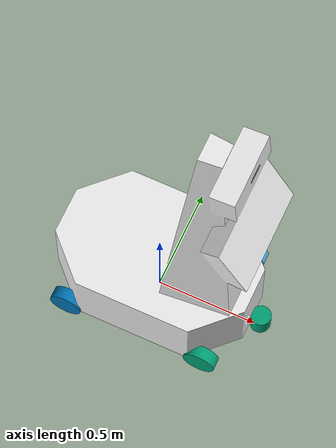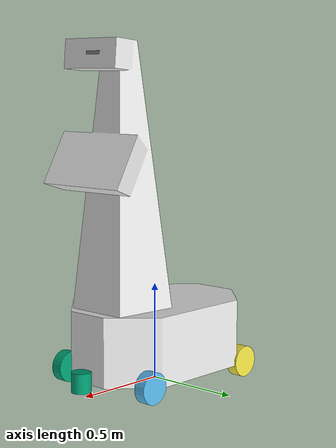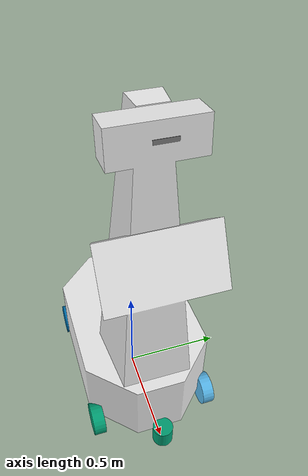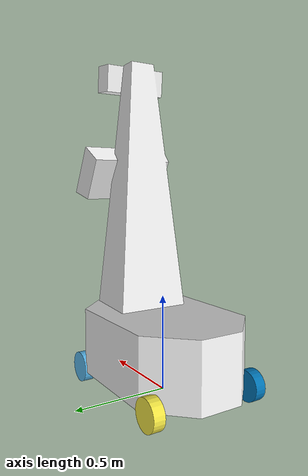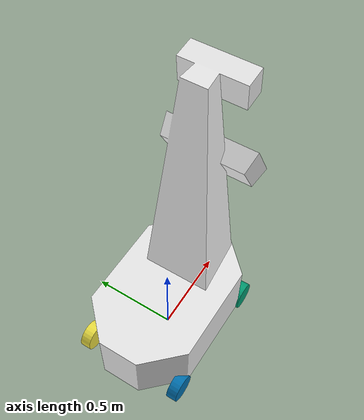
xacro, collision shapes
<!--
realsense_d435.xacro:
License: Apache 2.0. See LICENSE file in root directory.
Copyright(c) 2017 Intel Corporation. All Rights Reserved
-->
<?xml version="1.0" ?>
<robot name="rosa" xmlns:xacro="http://www.ros.org/wiki/xacro">

  <xacro:include filename="materials.xacro" />
  <xacro:include filename="rosa_gazebo.xacro" />
  <xacro:include filename="omni_wheel.xacro" />
  <xacro:include filename="rosa_body.xacro" />
  <xacro:include filename="realsense_d435.xacro" />
  <xacro:include filename="lidar_sensor.xacro"/>

<xacro:property name="wheel_x" value="0.35" />
<xacro:property name="wheel_y" value="0.295" />
<xacro:property name="wheel_z" value="0.075" />

  <!-- Base Macro-->
  <xacro:rosa_base name="chasis">
  </xacro:rosa_base>

  <!-- Wheel Macro -->
  <xacro:mechanum_wheel name="wheel_front_left" parent="base_link">
  	<origin xyz="${wheel_x} ${wheel_y} 0" rpy="0 0 0" />
  </xacro:mechanum_wheel>

  <xacro:mechanum_wheel name="wheel_front_right" parent="base_link" reflect="true">
  	<origin xyz="${wheel_x} -${wheel_y} 0" rpy="0 0 0" />
  </xacro:mechanum_wheel>

  <xacro:mechanum_wheel name="wheel_back_left" parent="base_link" reflect="true">
  	<origin xyz="-${wheel_x} ${wheel_y} 0" rpy="0 0 3.14159" />
  </xacro:mechanum_wheel>

  <xacro:mechanum_wheel name="wheel_back_right" parent="base_link">
  	<origin xyz="-${wheel_x} -${wheel_y} 0" rpy="0 0 3.14159" />
  </xacro:mechanum_wheel>

    <!-- 3D CAMERA -->
    <xacro:realsense_d435 name="camera" parent="base_link">
        <origin xyz="0.425 0.0 1.59" rpy="0.0 0.0 0.0"/>
    </xacro:realsense_d435>

  <!-- Sensor LiDAR -->
  <xacro:lidar_sensor name="lidar_sensor" parent="base_link">
    <origin xyz="0.53 0.0 0.01" rpy="0 0 0"/>
  </xacro:lidar_sensor>

<!-- Robot Footprint -->
  <link name="base_footprint"/>
  <link name="base_link"/>

  <joint name="footprint_joint" type="fixed">
    <parent link="base_footprint"/>
    <child link="base_link"/>
    <origin xyz="0.0 0.0 ${wheel_z}" rpy="0 0 0"/>
  </joint>
  <joint name="chasis_joint" type="fixed">
    <parent link="base_link"/>
    <child link="chasis"/>
    <origin xyz="0.0 0.0 0" rpy="0 0 0"/>
  </joint>

</robot>

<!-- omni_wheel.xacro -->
<robot xmlns:xacro="http://www.ros.org/wiki/xacro" name="rosa">

  <xacro:macro name="mechanum_wheel" params="name parent reflect:='false' *origin">

   <link name="${name}_link" type="wheel">
    <inertial>
      <mass value="0.25" />
      <origin xyz="0 0 0" rpy="0 0 0" />
        <inertia  ixx="0.04" ixy="0.0007" ixz="0.0"
                  iyy="0.02" iyz="0.004"
                  izz="0.05" />
    </inertial>

    <visual>
     <geometry>
     <xacro:if value="${reflect}">
        <mesh filename="file://$(find rosa_description)/description/rosa/meshes/MECANUM_WHEEL_mhg.dae" scale="1 -1 1"/>
     </xacro:if>
     <xacro:unless value="${reflect}">
        <mesh filename="file://$(find rosa_description)/description/rosa/meshes/MECANUM_WHEEL_mhg.dae" scale="1 1 1"/>
     </xacro:unless>
     </geometry>
    </visual>
    <collision>
     <origin xyz="0 0 0" rpy="1.5707 0 0"/>
     <geometry>
	<cylinder length="0.06" radius="0.08"/>
     </geometry>
    </collision>
   </link>

   <joint name="${name}_joint" type="continuous">
    <xacro:insert_block name="origin" />
    <axis xyz="0 1 0" />
    <joint_properties damping="0.01" friction="0.01" />
    <parent link="${parent}" />
    <child link="${name}_link" />
   </joint>

  <gazebo reference="${name}_link">
    <mu1 value="0.1"/>
    <mu2 value="0.1"/>
  </gazebo>

  </xacro:macro>

</robot>

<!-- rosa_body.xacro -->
<robot xmlns:xacro="http://www.ros.org/wiki/xacro" name="rosa">

<xacro:macro name="rosa_base" params="name">
  <link name="${name}">
    <inertial>
      <mass value="80"/>
      <origin xyz="0 0 0.3" />
       <inertia ixx="5.652232699207" ixy="0.009719934438" ixz="1.293988226423"
               iyy="5.669473158652" iyz="0.007379583694"
               izz="5.683196351726" />
    </inertial>
    <visual>
      <origin xyz="0. 0. ${wheel_z}" rpy="0 3.14159 3.14159" />
      <geometry>
          <mesh filename="file://$(find rosa_description)/description/rosa/meshes/ROSA_BODY.dae"/>
      </geometry>
      <material name="white"/>
    </visual>
    <collision>
      <origin xyz="0. 0. ${wheel_z}" rpy="0 3.14159 3.14159" />
      <geometry>
         <mesh filename="file://$(find rosa_description)/description/rosa/meshes/ROSA_BODY_SIMPLE.stl"/>
      </geometry>
    </collision>
  </link>

</xacro:macro>

</robot>

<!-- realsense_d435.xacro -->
<robot xmlns:xacro="http://ros.org/wiki/xacro">

    <xacro:macro name="realsense_d435" params="name parent *origin">

	<!-- The following values are approximate, and the camera node
         publishing TF values with actual calibrated camera extrinsic values -->
        <xacro:property name="d435_cam_depth_to_left_ir_offset" value="0.0"/>
        <xacro:property name="d435_cam_depth_to_right_ir_offset" value="-0.050"/>
        <xacro:property name="d435_cam_depth_to_color_offset" value="0.015"/>

        <!-- The following values model the aluminum peripherial case for the
        D435 camera, with the camera joint represented by the actual
        peripherial camera tripod mount -->
        <xacro:property name="d435_cam_width" value="0.090"/>
        <xacro:property name="d435_cam_height" value="0.025"/>
        <xacro:property name="d435_cam_depth" value="0.02505"/>
        <xacro:property name="d435_cam_mount_from_center_offset" value="0.0149"/>

        <!-- The following offset is relative the the physical D435 camera peripherial
        camera tripod mount -->
        <xacro:property name="d435_cam_depth_px" value="0.02"/>
        <xacro:property name="d435_cam_depth_py" value="0.0175"/>
        <xacro:property name="d435_cam_depth_pz" value="${d435_cam_height/2}"/>

        <material name="${name}_aluminum">
            <color rgba="0.5 0.5 0.5 1"/>
        </material>

        <!-- camera body, with origin at bottom screw mount -->
        <joint name="${name}_d435_joint" type="fixed">
            <xacro:insert_block name="origin" />
            <parent link="${parent}"/>
            <child link="${name}_link" />
        </joint>

        <link name="${name}_link">
            <visual>
                <origin xyz="${d435_cam_mount_from_center_offset} 0.0 ${d435_cam_height/2}" rpy="${pi/2} 0 ${pi/2}"/>
                <geometry>
                   <mesh filename="file://$(find rosa_description)/description/rosa/meshes/realsense_d435.dae"/>
                </geometry>
                <material name="${name}_aluminum"/>
            </visual>
            <collision>
                <origin xyz="0.0 0.0 ${d435_cam_height/2}" rpy="0 0 0"/>
                <geometry>
                    <box size="${d435_cam_depth} ${d435_cam_width} ${d435_cam_height}"/>
                </geometry>
            </collision>
            <inertial>
                <!-- The following are not reliable values, and should not be used for modeling -->
                <mass value="0.564" />
                <origin xyz="0 0 0" />
                <inertia ixx="0.003881243" ixy="0.0" ixz="0.0" iyy="0.000498940" iyz="0.0" izz="0.003879257" />
            </inertial>
        </link>

        <!-- camera depth joints and links -->
        <joint name="${name}_depth_joint" type="fixed">
            <origin xyz="${d435_cam_depth_px} ${d435_cam_depth_py} ${d435_cam_depth_pz}" rpy="0 0 0"/>
            <parent link="${name}_link"/>
            <child link="${name}_depth_frame" />
        </joint>
        <link name="${name}_depth_frame"/>

        <joint name="${name}_depth_optical_joint" type="fixed">
            <origin xyz="0.02 0 0" rpy="${-pi/2} 0 ${-pi/2}" />
            <parent link="${name}_depth_frame" />
            <child link="${name}_depth_optical_frame" />
        </joint>
        <link name="${name}_depth_optical_frame"/>

        <!-- camera color joints and links -->
        <joint name="${name}_color_joint" type="fixed">
            <origin xyz="${d435_cam_depth_px} ${d435_cam_depth_py} ${d435_cam_depth_pz}" rpy="0 0 0"/>
            <parent link="${name}_link"/>
            <child link="${name}_color_frame" />
        </joint>
        <link name="${name}_color_frame"/>

        <joint name="${name}_color_optical_joint" type="fixed">
            <origin xyz="0.02 0 0" rpy="${-pi/2} 0 ${-pi/2}" />
            <parent link="${name}_color_frame" />
            <child link="${name}_color_optical_frame" />
        </joint>
        <link name="${name}_color_optical_frame"/>

        <gazebo reference="${name}_link">
            <sensor type="depth" name="${name}">
                <visualize>true</visualize>
                <update_rate>10.0</update_rate>
                <camera name="${name}_depth_camera">
                    <horizontal_fov>1.21</horizontal_fov>
                    <image>
                        <width>640</width>
                        <height>360</height>
                        <format>R8G8B8</format>
                    </image>
                    <clip>
                        <near>0.13</near>
                        <far>30.0</far>
                    </clip>

                </camera>
                <plugin name="depth_camera_controller" filename="libgazebo_ros_camera.so">
                    <baseline>0.2</baseline>
                    <alwaysOn>true</alwaysOn>
                    <updateRate>0.0</updateRate>
                    <frame_name>${name}_depth_optical_frame</frame_name>
                    <pointCloudCutoff>0.105</pointCloudCutoff>
                    <pointCloudCutoffMax>10.0</pointCloudCutoffMax>
                    <distortionK1>0.00000001</distortionK1>
                    <distortionK2>0.00000001</distortionK2>
                    <distortionK3>0.00000001</distortionK3>
                    <distortionT1>0.00000001</distortionT1>
                    <distortionT2>0.00000001</distortionT2>
                    <CxPrime>0</CxPrime>
                    <Cx>0</Cx>
                    <Cy>0</Cy>
                    <focalLength>0</focalLength>
                    <hackBaseline>0</hackBaseline>
                    <ros>
                        <imageTopicName>${name}/image_raw</imageTopicName>
                        <cameraInfoTopicName>${name}/camera_info</cameraInfoTopicName>
                        <depthImageTopicName>${name}/depth_image_raw</depthImageTopicName>
                        <pointCloudTopicName>${name}/points</pointCloudTopicName>
     		        </ros>
                </plugin>

            </sensor>
       </gazebo>

    </xacro:macro>

</robot>

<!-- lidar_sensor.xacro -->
<robot xmlns:xacro="http://ros.org/wiki/xacro" name="rosa">

  <xacro:macro name="lidar_sensor" params="name parent *origin">
    <link name="${name}_link">
      <visual>
     <geometry>
        <mesh filename="file://$(find rosa_description)/description/rosa/meshes/hokuyo.dae" scale="1 1 1"/>
     </geometry>
    </visual>
      <collision>
        <origin xyz="0.0 0.0 0.0" rpy="0 0 0"/>
        <geometry>
          <cylinder radius="0.05" length="0.1"/>
        </geometry>
      </collision>
      <inertial>
        <mass value="0.1"/>
        <origin xyz="0 0 0" rpy="0 0 0"/>
        <inertia ixx="0.0001" ixy="0.0" ixz="0.0" iyy="0.0001" iyz="0.0" izz="0.0001"/>
      </inertial>
    </link>

    <joint name="${name}_joint" type="fixed">
      <parent link="${parent}"/>
      <child link="${name}_link"/>
      <xacro:insert_block name="origin"/>
    </joint>

    <gazebo reference="${name}_link">
      <sensor type="ray" name="${name}">
      <visualize>true</visualize>
        <update_rate>20</update_rate>
        <ray>
          <scan>
            <horizontal>
              <samples>1440</samples>
              <resolution>0.25*(360/1440)</resolution>
              <min_angle>-1.5307</min_angle>
              <max_angle>1.5307</max_angle>
            </horizontal>
          </scan>
          <range>
            <min>0.07</min>
            <max>30.0</max>
            <resolution>0.1</resolution>
          </range>
        </ray>
        <plugin name="laser_controller" filename="libgazebo_ros_ray_sensor.so">
          <ros>
            <argument>~/out:=scan</argument>
          </ros>
          <output_type>sensor_msgs/LaserScan</output_type>
          <frame_name>${name}_link</frame_name>
          <QoS>
            <reliability>RELIABLE</reliability>
            <durability>TRANSIENT_LOCAL</durability>
          </QoS>
        </plugin>
      </sensor>
    </gazebo>
  </xacro:macro>

</robot>
